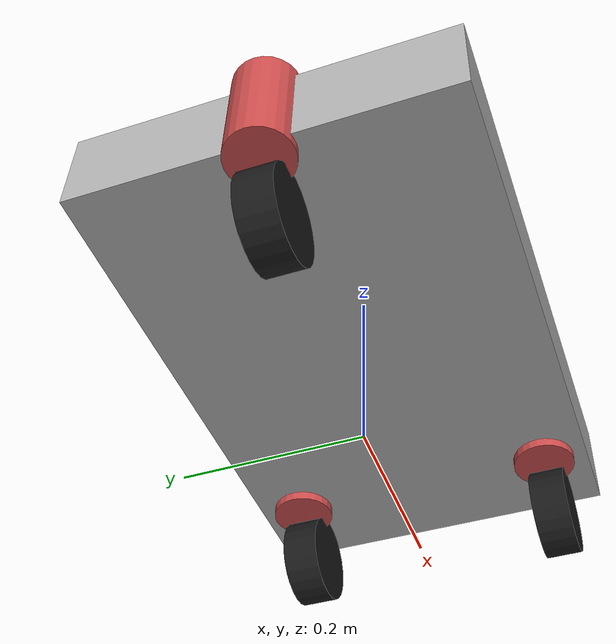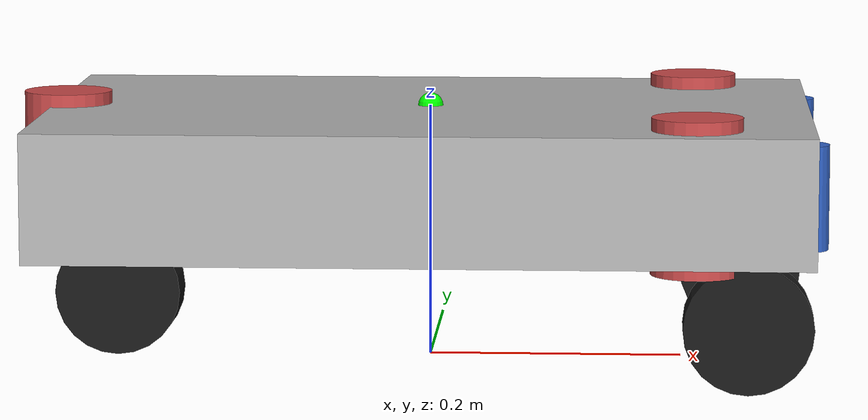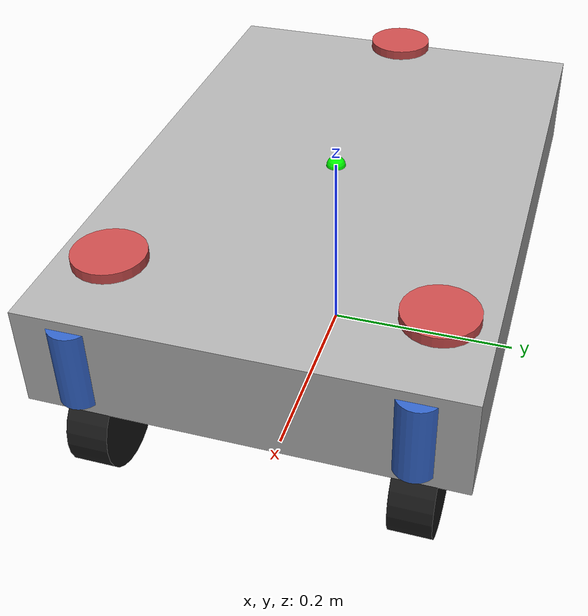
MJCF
<mujoco model="mabel_mobile_base_component">
    <asset>
        <material name="base_chassis_mat" rgba="0.7 0.7 0.7 1"/>
        <material name="wheel_mat" rgba="0.1 0.1 0.1 1"/>

        <material name="steer_motor_mat" rgba="0.2 0.4 0.8 1"/>
        <material name="drive_motor_mat" rgba="0.8 0.3 0.3 1"/>
    </asset>

    <worldbody>
        <body name="chassis" pos="0 0 0.15">
            <geom type="box" size="0.3 0.2 0.05" material="base_chassis_mat" mass="15"/>

            <site name="lift_mount_point" pos="0 0 0.05" size="0.01" rgba="0 1 0 1"/>

            <body name="swerve_fl" pos="0.25 0.15 -0.05">
                <joint name="steer_fl" type="hinge" axis="0 0 1" limited="false" damping="0.5" frictionloss="0.1"/>

                <geom type="cylinder" size="0.02 0.04" pos="0.04 0 0.05" material="steer_motor_mat" contype="0" conaffinity="0" mass="0.5"/>
                <geom type="cylinder" size="0.035 0.06" pos="-0.04 0 0.05" material="drive_motor_mat" contype="0" conaffinity="0" mass="1.0"/>

                <body name="wheel_fl" pos="0 0 -0.05">
                    <joint name="drive_fl" type="hinge" axis="0 1 0" damping="0.05"/>
                    <geom type="cylinder" size="0.05 0.02" euler="90 0 0" material="wheel_mat" mass="0.5" friction="1 0.005 0.0001"/>
                </body>
            </body>

            <body name="swerve_fr" pos="0.25 -0.15 -0.05">
                <joint name="steer_fr" type="hinge" axis="0 0 1" limited="false" damping="0.5" frictionloss="0.1"/>

                <geom type="cylinder" size="0.02 0.04" pos="0.04 0 0.05" material="steer_motor_mat" contype="0" conaffinity="0" mass="0.5"/>
                <geom type="cylinder" size="0.035 0.06" pos="-0.04 0 0.05" material="drive_motor_mat" contype="0" conaffinity="0" mass="1.0"/>

                <body name="wheel_fr" pos="0 0 -0.05">
                    <joint name="drive_fr" type="hinge" axis="0 1 0" damping="0.05"/>
                    <geom type="cylinder" size="0.05 0.02" euler="90 0 0" material="wheel_mat" mass="0.5" friction="1 0.005 0.0001"/>
                </body>
            </body>

            <body name="swerve_bc" pos="-0.25 0 -0.05">
                <joint name="steer_bc" type="hinge" axis="0 0 1" limited="false" damping="0.5" frictionloss="0.1"/>

                <geom type="cylinder" size="0.02 0.04" pos="0.04 0 0.05" material="steer_motor_mat" contype="0" conaffinity="0" mass="0.5"/>
                <geom type="cylinder" size="0.035 0.06" pos="-0.04 0 0.05" material="drive_motor_mat" contype="0" conaffinity="0" mass="1.0"/>

                <body name="wheel_bc" pos="0 0 -0.05">
                    <joint name="drive_bc" type="hinge" axis="0 1 0" damping="0.05"/>
                    <geom type="cylinder" size="0.05 0.02" euler="90 0 0" material="wheel_mat" mass="0.5" friction="1 0.005 0.0001"/>
                </body>
            </body>

        </body>
    </worldbody>

    <actuator>
        <position name="act_steer_fl" joint="steer_fl" kp="50" kv="5"/>
        <position name="act_steer_fr" joint="steer_fr" kp="50" kv="5"/>
        <position name="act_steer_bc" joint="steer_bc" kp="50" kv="5"/>

        <velocity name="act_drive_fl" joint="drive_fl" kv="10"/>
        <velocity name="act_drive_fr" joint="drive_fr" kv="10"/>
        <velocity name="act_drive_bc" joint="drive_bc" kv="10"/>
    </actuator>
</mujoco>
